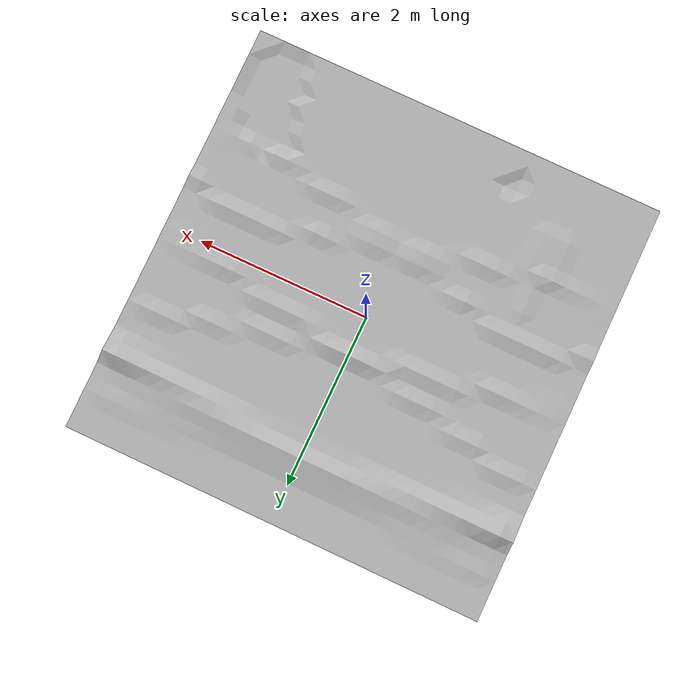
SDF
<?xml version="1.0" ?>
<sdf version="1.4">
  <model name="duckieTerrain3">

    <link name="link">
      <collision name="collision">
        <geometry>
          <mesh>
            <uri>model://terrain3/meshes/terrain3.dae</uri>
          </mesh>
        </geometry>
      </collision>
      <visual name="visual">
        <cast_shadows>false</cast_shadows>
        <geometry>
          <mesh>
            <uri>model://terrain3/meshes/terrain3.dae</uri>
          </mesh>
        </geometry>
      </visual>
      <inertial>
       <mass>300</mass>
       <inertia>
          <ixx>150</ixx>
          <ixy>0</ixy>
          <ixz>0</ixz>
          <iyy>150</iyy>
          <iyz>0</iyz>
          <izz>150</izz>
       </inertia>
      </inertial>
    </link>
  </model>
</sdf>
